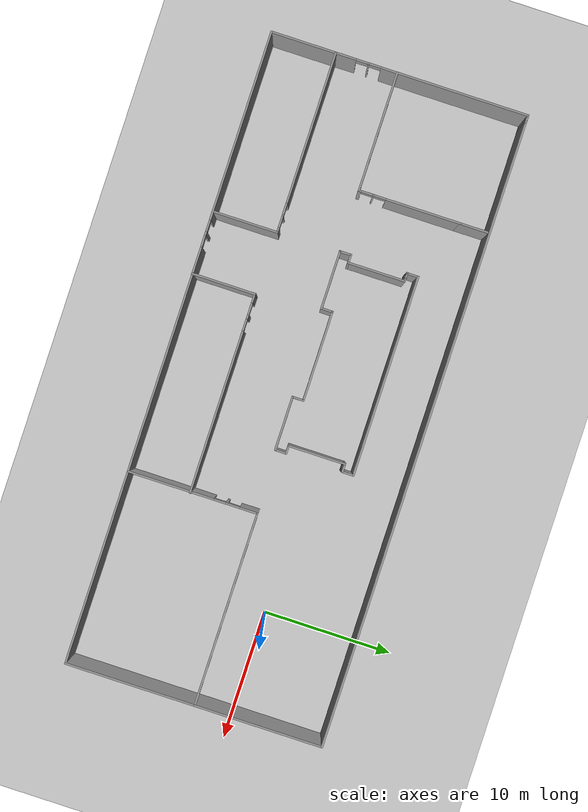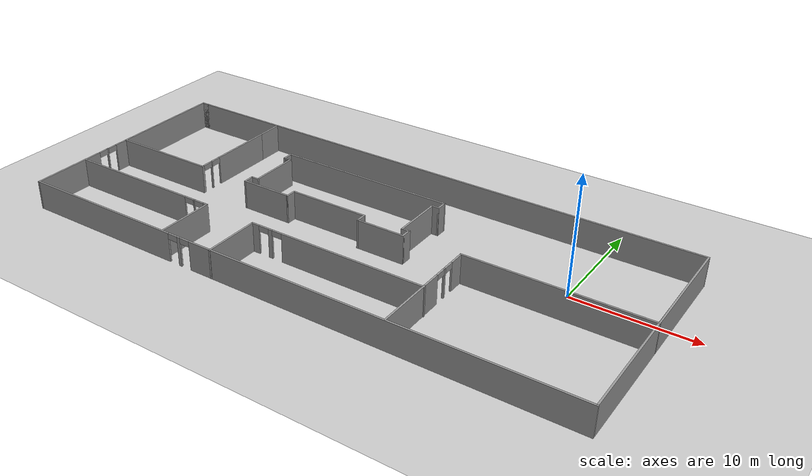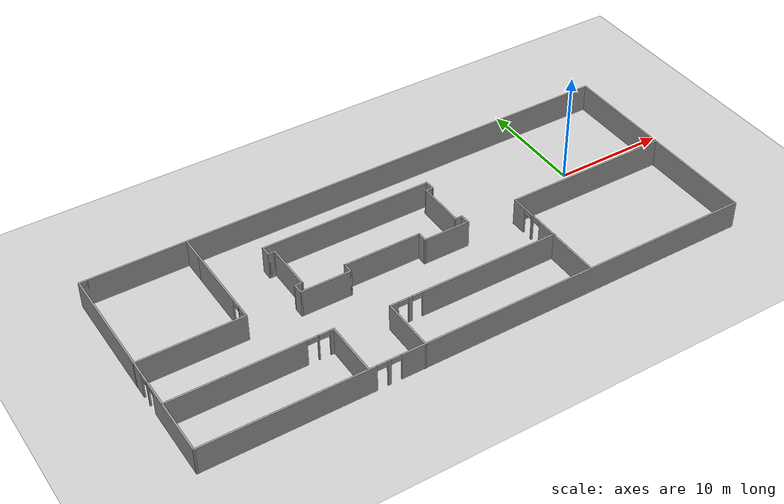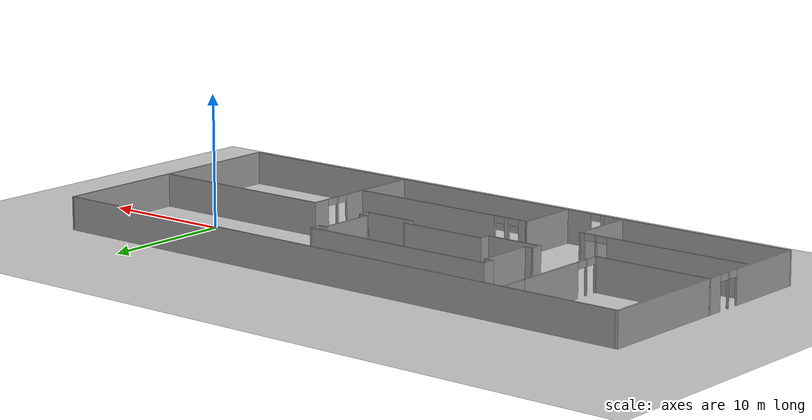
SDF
<sdf version="1.6">
 <world name="default">
  <model name="ground_plane">
   <static>1</static>
   <link name="link">
    <collision name="collision">
     <geometry><plane><normal>0 0 1</normal><size>100 100</size></plane></geometry>
     <surface><friction><ode><mu>100</mu><mu2>50</mu2></ode></friction></surface>
    </collision>
    <visual name="visual">
     <cast_shadows>0</cast_shadows>
     <geometry><plane><normal>0 0 1</normal><size>100 100</size></plane></geometry>
     <material>
      <script><uri>file://media/materials/scripts/gazebo.material</uri><name>Gazebo/Grey</name></script>
     </material>
    </visual>
   </link>
  </model>
  <model name="build1">
   <pose>-16.9008 -2.95936 0 0 -0 0</pose>
   <link name="Wall_0">
    <collision name="Wall_0_Collision">
     <geometry><box><size>48.75 0.15 2.5</size></box></geometry>
     <pose>0 0 1.25 0 -0 0</pose>
    </collision>
    <visual name="Wall_0_Visual">
     <pose>0 0 1.25 0 -0 0</pose>
     <geometry><box><size>48.75 0.15 2.5</size></box></geometry>
     <material>
      <script><uri>file://media/materials/scripts/gazebo.material</uri><name>Gazebo/Grey</name></script>
      <ambient>1 1 1 1</ambient>
     </material>
    </visual>
    <pose>0.128151 9.93761 0 0 -0 0</pose>
   </link>
   <link name="Wall_10">
    <collision name="Wall_10_Collision">
     <geometry><box><size>0.75 0.15 2.5</size></box></geometry>
     <pose>0 0 1.25 0 -0 0</pose>
    </collision>
    <visual name="Wall_10_Visual">
     <pose>0 0 1.25 0 -0 0</pose>
     <geometry><box><size>0.75 0.15 2.5</size></box></geometry>
     <material>
      <script><uri>file://media/materials/scripts/gazebo.material</uri><name>Gazebo/Grey</name></script>
      <ambient>1 1 1 1</ambient>
     </material>
    </visual>
    <pose>-24.1218 9.93761 0 0 -0 0</pose>
   </link>
   <link name="Wall_101">
    <collision name="Wall_101_Collision">
     <geometry><box><size>10 0.15 2.5</size></box></geometry>
     <pose>0 0 1.25 0 -0 0</pose>
    </collision>
    <visual name="Wall_101_Visual">
     <pose>0 0 1.25 0 -0 0</pose>
     <geometry><box><size>10 0.15 2.5</size></box></geometry>
     <material>
      <script><uri>file://media/materials/scripts/gazebo.material</uri><name>Gazebo/Grey</name></script>
      <ambient>1 1 1 1</ambient>
     </material>
    </visual>
    <pose>24.4281 5.01261 0 0 0 -1.5708</pose>
   </link>
   <link name="Wall_102">
    <collision name="Wall_102_Collision">
     <geometry><box><size>15 0.15 2.5</size></box></geometry>
     <pose>0 0 1.25 0 -0 0</pose>
    </collision>
    <visual name="Wall_102_Visual">
     <pose>0 0 1.25 0 -0 0</pose>
     <geometry><box><size>15 0.15 2.5</size></box></geometry>
     <material>
      <script><uri>file://media/materials/scripts/gazebo.material</uri><name>Gazebo/Grey</name></script>
      <ambient>1 1 1 1</ambient>
     </material>
    </visual>
    <pose>17.0032 0.087612 0 0 -0 3.14159</pose>
   </link>
   <link name="Wall_103">
    <pose>9.57815 -2.46239 0 0 0 -1.5708</pose>
    <visual name="Wall_103_Visual_0">
     <pose>-1.90662 0 1.25 0 -0 0</pose>
     <geometry><box><size>1.43676 0.15 2.5</size></box></geometry>
     <material>
      <script><uri>file://media/materials/scripts/gazebo.material</uri><name>Gazebo/Grey</name></script>
      <ambient>1 1 1 1</ambient>
     </material>
    </visual>
    <collision name="Wall_103_Collision_0">
     <geometry><box><size>1.43676 0.15 2.5</size></box></geometry>
     <pose>-1.90662 0 1.25 0 -0 0</pose>
    </collision>
    <visual name="Wall_103_Visual_1">
     <pose>-0.188989 0 1.25 0 -0 0</pose>
     <geometry><box><size>0.198503 0.15 2.5</size></box></geometry>
     <material>
      <script><uri>file://media/materials/scripts/gazebo.material</uri><name>Gazebo/Grey</name></script>
      <ambient>1 1 1 1</ambient>
     </material>
    </visual>
    <collision name="Wall_103_Collision_1">
     <geometry><box><size>0.198503 0.15 2.5</size></box></geometry>
     <pose>-0.188989 0 1.25 0 -0 0</pose>
    </collision>
    <visual name="Wall_103_Visual_2">
     <pose>1.71763 0 1.25 0 -0 0</pose>
     <geometry><box><size>1.81474 0.15 2.5</size></box></geometry>
     <material>
      <script><uri>file://media/materials/scripts/gazebo.material</uri><name>Gazebo/Grey</name></script>
      <ambient>1 1 1 1</ambient>
     </material>
    </visual>
    <collision name="Wall_103_Collision_2">
     <geometry><box><size>1.81474 0.15 2.5</size></box></geometry>
     <pose>1.71763 0 1.25 0 -0 0</pose>
    </collision>
    <visual name="Wall_103_Visual_3">
     <pose>-0.73824 0 2.25 0 -0 0</pose>
     <geometry><box><size>0.9 0.15 0.5</size></box></geometry>
     <material>
      <script><uri>file://media/materials/scripts/gazebo.material</uri><name>Gazebo/Grey</name></script>
      <ambient>1 1 1 1</ambient>
     </material>
    </visual>
    <collision name="Wall_103_Collision_3">
     <geometry><box><size>0.9 0.15 0.5</size></box></geometry>
     <pose>-0.73824 0 2.25 0 -0 0</pose>
    </collision>
    <visual name="Wall_103_Visual_4">
     <pose>0.360263 0 2.25 0 -0 0</pose>
     <geometry><box><size>0.9 0.15 0.5</size></box></geometry>
     <material>
      <script><uri>file://media/materials/scripts/gazebo.material</uri><name>Gazebo/Grey</name></script>
      <ambient>1 1 1 1</ambient>
     </material>
    </visual>
    <collision name="Wall_103_Collision_4">
     <geometry><box><size>0.9 0.15 0.5</size></box></geometry>
     <pose>0.360263 0 2.25 0 -0 0</pose>
    </collision>
   </link>
   <link name="Wall_105">
    <pose>1.96209 -5.08761 0 0 -0 0</pose>
    <visual name="Wall_105_Visual_0">
     <pose>-7.37124 0 1.25 0 -0 0</pose>
     <geometry><box><size>0.757518 0.15 2.5</size></box></geometry>
     <material>
      <script><uri>file://media/materials/scripts/gazebo.material</uri><name>Gazebo/Grey</name></script>
      <ambient>1 1 1 1</ambient>
     </material>
    </visual>
    <collision name="Wall_105_Collision_0">
     <geometry><box><size>0.757518 0.15 2.5</size></box></geometry>
     <pose>-7.37124 0 1.25 0 -0 0</pose>
    </collision>
    <visual name="Wall_105_Visual_1">
     <pose>-5.91186 0 1.25 0 -0 0</pose>
     <geometry><box><size>0.361245 0.15 2.5</size></box></geometry>
     <material>
      <script><uri>file://media/materials/scripts/gazebo.material</uri><name>Gazebo/Grey</name></script>
      <ambient>1 1 1 1</ambient>
     </material>
    </visual>
    <collision name="Wall_105_Collision_1">
     <geometry><box><size>0.361245 0.15 2.5</size></box></geometry>
     <pose>-5.91186 0 1.25 0 -0 0</pose>
    </collision>
    <visual name="Wall_105_Visual_2">
     <pose>1.45938 0 1.25 0 -0 0</pose>
     <geometry><box><size>12.5812 0.15 2.5</size></box></geometry>
     <material>
      <script><uri>file://media/materials/scripts/gazebo.material</uri><name>Gazebo/Grey</name></script>
      <ambient>1 1 1 1</ambient>
     </material>
    </visual>
    <collision name="Wall_105_Collision_2">
     <geometry><box><size>12.5812 0.15 2.5</size></box></geometry>
     <pose>1.45938 0 1.25 0 -0 0</pose>
    </collision>
    <visual name="Wall_105_Visual_3">
     <pose>-6.54248 0 2.25 0 -0 0</pose>
     <geometry><box><size>0.9 0.15 0.5</size></box></geometry>
     <material>
      <script><uri>file://media/materials/scripts/gazebo.material</uri><name>Gazebo/Grey</name></script>
      <ambient>1 1 1 1</ambient>
     </material>
    </visual>
    <collision name="Wall_105_Collision_3">
     <geometry><box><size>0.9 0.15 0.5</size></box></geometry>
     <pose>-6.54248 0 2.25 0 -0 0</pose>
    </collision>
    <visual name="Wall_105_Visual_4">
     <pose>-5.28124 0 2.25 0 -0 0</pose>
     <geometry><box><size>0.9 0.15 0.5</size></box></geometry>
     <material>
      <script><uri>file://media/materials/scripts/gazebo.material</uri><name>Gazebo/Grey</name></script>
      <ambient>1 1 1 1</ambient>
     </material>
    </visual>
    <collision name="Wall_105_Collision_4">
     <geometry><box><size>0.9 0.15 0.5</size></box></geometry>
     <pose>-5.28124 0 2.25 0 -0 0</pose>
    </collision>
   </link>
   <link name="Wall_14">
    <collision name="Wall_14_Collision">
     <geometry><box><size>9.25 0.15 2.5</size></box></geometry>
     <pose>0 0 1.25 0 -0 0</pose>
    </collision>
    <visual name="Wall_14_Visual">
     <pose>0 0 1.25 0 -0 0</pose>
     <geometry><box><size>9.25 0.15 2.5</size></box></geometry>
     <material>
      <script><uri>file://media/materials/scripts/gazebo.material</uri><name>Gazebo/Grey</name></script>
      <ambient>1 1 1 1</ambient>
     </material>
    </visual>
    <pose>-19.8782 -0.176763 0 0 -0 3.14159</pose>
   </link>
   <link name="Wall_16">
    <pose>-15.3282 3.74824 0 0 -0 1.5708</pose>
    <visual name="Wall_16_Visual_0">
     <pose>-3.87767 0 1.25 0 -0 0</pose>
     <geometry><box><size>0.244662 0.15 2.5</size></box></geometry>
     <material>
      <script><uri>file://media/materials/scripts/gazebo.material</uri><name>Gazebo/Grey</name></script>
      <ambient>1 1 1 1</ambient>
     </material>
    </visual>
    <collision name="Wall_16_Collision_0">
     <geometry><box><size>0.244662 0.15 2.5</size></box></geometry>
     <pose>-3.87767 0 1.25 0 -0 0</pose>
    </collision>
    <visual name="Wall_16_Visual_1">
     <pose>-2.79773 0 1.25 0 -0 0</pose>
     <geometry><box><size>0.11521 0.15 2.5</size></box></geometry>
     <material>
      <script><uri>file://media/materials/scripts/gazebo.material</uri><name>Gazebo/Grey</name></script>
      <ambient>1 1 1 1</ambient>
     </material>
    </visual>
    <collision name="Wall_16_Collision_1">
     <geometry><box><size>0.11521 0.15 2.5</size></box></geometry>
     <pose>-2.79773 0 1.25 0 -0 0</pose>
    </collision>
    <visual name="Wall_16_Visual_2">
     <pose>1.07994 0 1.25 0 -0 0</pose>
     <geometry><box><size>5.84013 0.15 2.5</size></box></geometry>
     <material>
      <script><uri>file://media/materials/scripts/gazebo.material</uri><name>Gazebo/Grey</name></script>
      <ambient>1 1 1 1</ambient>
     </material>
    </visual>
    <collision name="Wall_16_Collision_2">
     <geometry><box><size>5.84013 0.15 2.5</size></box></geometry>
     <pose>1.07994 0 1.25 0 -0 0</pose>
    </collision>
    <visual name="Wall_16_Visual_3">
     <pose>-3.30534 0 2.25 0 -0 0</pose>
     <geometry><box><size>0.9 0.15 0.5</size></box></geometry>
     <material>
      <script><uri>file://media/materials/scripts/gazebo.material</uri><name>Gazebo/Grey</name></script>
      <ambient>1 1 1 1</ambient>
     </material>
    </visual>
    <collision name="Wall_16_Collision_3">
     <geometry><box><size>0.9 0.15 0.5</size></box></geometry>
     <pose>-3.30534 0 2.25 0 -0 0</pose>
    </collision>
    <visual name="Wall_16_Visual_4">
     <pose>-2.29013 0 2.25 0 -0 0</pose>
     <geometry><box><size>0.9 0.15 0.5</size></box></geometry>
     <material>
      <script><uri>file://media/materials/scripts/gazebo.material</uri><name>Gazebo/Grey</name></script>
      <ambient>1 1 1 1</ambient>
     </material>
    </visual>
    <collision name="Wall_16_Collision_4">
     <geometry><box><size>0.9 0.15 0.5</size></box></geometry>
     <pose>-2.29013 0 2.25 0 -0 0</pose>
    </collision>
   </link>
   <link name="Wall_19">
    <collision name="Wall_19_Collision">
     <geometry><box><size>2.25 0.15 2.5</size></box></geometry>
     <pose>0 0 1.25 0 -0 0</pose>
    </collision>
    <visual name="Wall_19_Visual">
     <pose>0 0 1.25 0 -0 0</pose>
     <geometry><box><size>2.25 0.15 2.5</size></box></geometry>
     <material>
      <script><uri>file://media/materials/scripts/gazebo.material</uri><name>Gazebo/Grey</name></script>
      <ambient>1 1 1 1</ambient>
     </material>
    </visual>
    <pose>-15.3282 8.72324 0 0 -0 1.5708</pose>
   </link>
   <link name="Wall_21">
    <pose>-17.4625 -4.93332 0 0 -0 0</pose>
    <visual name="Wall_21_Visual_0">
     <pose>-1.1775 0 1.25 0 -0 0</pose>
     <geometry><box><size>11.645 0.15 2.5</size></box></geometry>
     <material>
      <script><uri>file://media/materials/scripts/gazebo.material</uri><name>Gazebo/Grey</name></script>
      <ambient>1 1 1 1</ambient>
     </material>
    </visual>
    <collision name="Wall_21_Collision_0">
     <geometry><box><size>11.645 0.15 2.5</size></box></geometry>
     <pose>-1.1775 0 1.25 0 -0 0</pose>
    </collision>
    <visual name="Wall_21_Visual_1">
     <pose>5.6026 0 1.25 0 -0 0</pose>
     <geometry><box><size>0.115209 0.15 2.5</size></box></geometry>
     <material>
      <script><uri>file://media/materials/scripts/gazebo.material</uri><name>Gazebo/Grey</name></script>
      <ambient>1 1 1 1</ambient>
     </material>
    </visual>
    <collision name="Wall_21_Collision_1">
     <geometry><box><size>0.115209 0.15 2.5</size></box></geometry>
     <pose>5.6026 0 1.25 0 -0 0</pose>
    </collision>
    <visual name="Wall_21_Visual_2">
     <pose>6.7801 0 1.25 0 -0 0</pose>
     <geometry><box><size>0.439798 0.15 2.5</size></box></geometry>
     <material>
      <script><uri>file://media/materials/scripts/gazebo.material</uri><name>Gazebo/Grey</name></script>
      <ambient>1 1 1 1</ambient>
     </material>
    </visual>
    <collision name="Wall_21_Collision_2">
     <geometry><box><size>0.439798 0.15 2.5</size></box></geometry>
     <pose>6.7801 0 1.25 0 -0 0</pose>
    </collision>
    <visual name="Wall_21_Visual_3">
     <pose>5.09499 0 2.25 0 -0 0</pose>
     <geometry><box><size>0.9 0.15 0.5</size></box></geometry>
     <material>
      <script><uri>file://media/materials/scripts/gazebo.material</uri><name>Gazebo/Grey</name></script>
      <ambient>1 1 1 1</ambient>
     </material>
    </visual>
    <collision name="Wall_21_Collision_3">
     <geometry><box><size>0.9 0.15 0.5</size></box></geometry>
     <pose>5.09499 0 2.25 0 -0 0</pose>
    </collision>
    <visual name="Wall_21_Visual_4">
     <pose>6.1102 0 2.25 0 -0 0</pose>
     <geometry><box><size>0.9 0.15 0.5</size></box></geometry>
     <material>
      <script><uri>file://media/materials/scripts/gazebo.material</uri><name>Gazebo/Grey</name></script>
      <ambient>1 1 1 1</ambient>
     </material>
    </visual>
    <collision name="Wall_21_Collision_4">
     <geometry><box><size>0.9 0.15 0.5</size></box></geometry>
     <pose>6.1102 0 2.25 0 -0 0</pose>
    </collision>
   </link>
   <link name="Wall_22">
    <collision name="Wall_22_Collision">
     <geometry><box><size>5 0.15 2.5</size></box></geometry>
     <pose>0 0 1.25 0 -0 0</pose>
    </collision>
    <visual name="Wall_22_Visual">
     <pose>0 0 1.25 0 -0 0</pose>
     <geometry><box><size>5 0.15 2.5</size></box></geometry>
     <material>
      <script><uri>file://media/materials/scripts/gazebo.material</uri><name>Gazebo/Grey</name></script>
      <ambient>1 1 1 1</ambient>
     </material>
    </visual>
    <pose>-10.5375 -7.35832 0 0 0 -1.5708</pose>
   </link>
   <link name="Wall_24">
    <collision name="Wall_24_Collision">
     <geometry><box><size>5 0.15 2.5</size></box></geometry>
     <pose>0 0 1.25 0 -0 0</pose>
    </collision>
    <visual name="Wall_24_Visual">
     <pose>0 0 1.25 0 -0 0</pose>
     <geometry><box><size>5 0.15 2.5</size></box></geometry>
     <material>
      <script><uri>file://media/materials/scripts/gazebo.material</uri><name>Gazebo/Grey</name></script>
      <ambient>1 1 1 1</ambient>
     </material>
    </visual>
    <pose>-5.71291 -7.51261 0 0 -0 1.5708</pose>
   </link>
   <link name="Wall_26">
    <collision name="Wall_26_Collision">
     <geometry><box><size>5 0.15 2.5</size></box></geometry>
     <pose>0 0 1.25 0 -0 0</pose>
    </collision>
    <visual name="Wall_26_Visual">
     <pose>0 0 1.25 0 -0 0</pose>
     <geometry><box><size>5 0.15 2.5</size></box></geometry>
     <material>
      <script><uri>file://media/materials/scripts/gazebo.material</uri><name>Gazebo/Grey</name></script>
      <ambient>1 1 1 1</ambient>
     </material>
    </visual>
    <pose>9.57927 -7.43124 0 0 0 -1.5708</pose>
   </link>
   <link name="Wall_69">
    <collision name="Wall_69_Collision">
     <geometry><box><size>4.5 0.15 2.5</size></box></geometry>
     <pose>0 0 1.25 0 -0 0</pose>
    </collision>
    <visual name="Wall_69_Visual">
     <pose>0 0 1.25 0 -0 0</pose>
     <geometry><box><size>4.5 0.15 2.5</size></box></geometry>
     <material>
      <script><uri>file://media/materials/scripts/gazebo.material</uri><name>Gazebo/Grey</name></script>
      <ambient>1 1 1 1</ambient>
     </material>
    </visual>
    <pose>-8.40817 -0.110852 0 0 -0 0</pose>
   </link>
   <link name="Wall_7">
    <collision name="Wall_7_Collision">
     <geometry><box><size>20 0.15 2.5</size></box></geometry>
     <pose>0 0 1.25 0 -0 0</pose>
    </collision>
    <visual name="Wall_7_Visual">
     <pose>0 0 1.25 0 -0 0</pose>
     <geometry><box><size>20 0.15 2.5</size></box></geometry>
     <material>
      <script><uri>file://media/materials/scripts/gazebo.material</uri><name>Gazebo/Grey</name></script>
      <ambient>1 1 1 1</ambient>
     </material>
    </visual>
    <pose>24.4281 0.012612 0 0 0 -1.5708</pose>
   </link>
   <link name="Wall_70">
    <collision name="Wall_70_Collision">
     <geometry><box><size>1 0.15 2.5</size></box></geometry>
     <pose>0 0 1.25 0 -0 0</pose>
    </collision>
    <visual name="Wall_70_Visual">
     <pose>0 0 1.25 0 -0 0</pose>
     <geometry><box><size>1 0.15 2.5</size></box></geometry>
     <material>
      <script><uri>file://media/materials/scripts/gazebo.material</uri><name>Gazebo/Grey</name></script>
      <ambient>1 1 1 1</ambient>
     </material>
    </visual>
    <pose>-6.23316 0.314148 0 0 -0 1.5708</pose>
   </link>
   <link name="Wall_78">
    <collision name="Wall_78_Collision">
     <geometry><box><size>0.75 0.15 2.5</size></box></geometry>
     <pose>0 0 1.25 0 -0 0</pose>
    </collision>
    <visual name="Wall_78_Visual">
     <pose>0 0 1.25 0 -0 0</pose>
     <geometry><box><size>0.75 0.15 2.5</size></box></geometry>
     <material>
      <script><uri>file://media/materials/scripts/gazebo.material</uri><name>Gazebo/Grey</name></script>
      <ambient>1 1 1 1</ambient>
     </material>
    </visual>
    <pose>4.41683 0.739148 0 0 -0 3.14159</pose>
   </link>
   <link name="Wall_79">
    <collision name="Wall_79_Collision">
     <geometry><box><size>4.5 0.15 2.5</size></box></geometry>
     <pose>0 0 1.25 0 -0 0</pose>
    </collision>
    <visual name="Wall_79_Visual">
     <pose>0 0 1.25 0 -0 0</pose>
     <geometry><box><size>4.5 0.15 2.5</size></box></geometry>
     <material>
      <script><uri>file://media/materials/scripts/gazebo.material</uri><name>Gazebo/Grey</name></script>
      <ambient>1 1 1 1</ambient>
     </material>
    </visual>
    <pose>4.11684 2.91415 0 0 -0 1.5708</pose>
   </link>
   <link name="Wall_8">
    <pose>0.003151 -9.91239 0 0 -0 3.14159</pose>
    <visual name="Wall_8_Visual_0">
     <pose>-8.35572 0 1.25 0 -0 0</pose>
     <geometry><box><size>32.2886 0.15 2.5</size></box></geometry>
     <material>
      <script><uri>file://media/materials/scripts/gazebo.material</uri><name>Gazebo/Grey</name></script>
      <ambient>1 1 1 1</ambient>
     </material>
    </visual>
    <collision name="Wall_8_Collision_0">
     <geometry><box><size>32.2886 0.15 2.5</size></box></geometry>
     <pose>-8.35572 0 1.25 0 -0 0</pose>
    </collision>
    <visual name="Wall_8_Visual_1">
     <pose>8.82849 0 1.25 0 -0 0</pose>
     <geometry><box><size>0.279873 0.15 2.5</size></box></geometry>
     <material>
      <script><uri>file://media/materials/scripts/gazebo.material</uri><name>Gazebo/Grey</name></script>
      <ambient>1 1 1 1</ambient>
     </material>
    </visual>
    <collision name="Wall_8_Collision_1">
     <geometry><box><size>0.279873 0.15 2.5</size></box></geometry>
     <pose>8.82849 0 1.25 0 -0 0</pose>
    </collision>
    <visual name="Wall_8_Visual_2">
     <pose>17.1842 0 1.25 0 -0 0</pose>
     <geometry><box><size>14.6316 0.15 2.5</size></box></geometry>
     <material>
      <script><uri>file://media/materials/scripts/gazebo.material</uri><name>Gazebo/Grey</name></script>
      <ambient>1 1 1 1</ambient>
     </material>
    </visual>
    <collision name="Wall_8_Collision_2">
     <geometry><box><size>14.6316 0.15 2.5</size></box></geometry>
     <pose>17.1842 0 1.25 0 -0 0</pose>
    </collision>
    <visual name="Wall_8_Visual_3">
     <pose>8.23855 0 2.25 0 -0 0</pose>
     <geometry><box><size>0.9 0.15 0.5</size></box></geometry>
     <material>
      <script><uri>file://media/materials/scripts/gazebo.material</uri><name>Gazebo/Grey</name></script>
      <ambient>1 1 1 1</ambient>
     </material>
    </visual>
    <collision name="Wall_8_Collision_3">
     <geometry><box><size>0.9 0.15 0.5</size></box></geometry>
     <pose>8.23855 0 2.25 0 -0 0</pose>
    </collision>
    <visual name="Wall_8_Visual_4">
     <pose>9.41842 0 2.25 0 -0 0</pose>
     <geometry><box><size>0.9 0.15 0.5</size></box></geometry>
     <material>
      <script><uri>file://media/materials/scripts/gazebo.material</uri><name>Gazebo/Grey</name></script>
      <ambient>1 1 1 1</ambient>
     </material>
    </visual>
    <collision name="Wall_8_Collision_4">
     <geometry><box><size>0.9 0.15 0.5</size></box></geometry>
     <pose>9.41842 0 2.25 0 -0 0</pose>
    </collision>
   </link>
   <link name="Wall_80">
    <collision name="Wall_80_Collision">
     <geometry><box><size>0.75 0.15 2.5</size></box></geometry>
     <pose>0 0 1.25 0 -0 0</pose>
    </collision>
    <visual name="Wall_80_Visual">
     <pose>0 0 1.25 0 -0 0</pose>
     <geometry><box><size>0.75 0.15 2.5</size></box></geometry>
     <material>
      <script><uri>file://media/materials/scripts/gazebo.material</uri><name>Gazebo/Grey</name></script>
      <ambient>1 1 1 1</ambient>
     </material>
    </visual>
    <pose>4.41683 5.08915 0 0 -0 0</pose>
   </link>
   <link name="Wall_81">
    <collision name="Wall_81_Collision">
     <geometry><box><size>1 0.15 2.5</size></box></geometry>
     <pose>0 0 1.25 0 -0 0</pose>
    </collision>
    <visual name="Wall_81_Visual">
     <pose>0 0 1.25 0 -0 0</pose>
     <geometry><box><size>1 0.15 2.5</size></box></geometry>
     <material>
      <script><uri>file://media/materials/scripts/gazebo.material</uri><name>Gazebo/Grey</name></script>
      <ambient>1 1 1 1</ambient>
     </material>
    </visual>
    <pose>4.71683 5.51415 0 0 -0 1.5708</pose>
   </link>
   <link name="Wall_82">
    <collision name="Wall_82_Collision">
     <geometry><box><size>15.5 0.15 2.5</size></box></geometry>
     <pose>0 0 1.25 0 -0 0</pose>
    </collision>
    <visual name="Wall_82_Visual">
     <pose>0 0 1.25 0 -0 0</pose>
     <geometry><box><size>15.5 0.15 2.5</size></box></geometry>
     <material>
      <script><uri>file://media/materials/scripts/gazebo.material</uri><name>Gazebo/Grey</name></script>
      <ambient>1 1 1 1</ambient>
     </material>
    </visual>
    <pose>-2.95817 5.93915 0 0 -0 3.14159</pose>
   </link>
   <link name="Wall_84">
    <collision name="Wall_84_Collision">
     <geometry><box><size>1 0.15 2.5</size></box></geometry>
     <pose>0 0 1.25 0 -0 0</pose>
    </collision>
    <visual name="Wall_84_Visual">
     <pose>0 0 1.25 0 -0 0</pose>
     <geometry><box><size>1 0.15 2.5</size></box></geometry>
     <material>
      <script><uri>file://media/materials/scripts/gazebo.material</uri><name>Gazebo/Grey</name></script>
      <ambient>1 1 1 1</ambient>
     </material>
    </visual>
    <pose>-10.6332 5.51415 0 0 0 -1.5708</pose>
   </link>
   <link name="Wall_85">
    <collision name="Wall_85_Collision">
     <geometry><box><size>0.5 0.15 2.5</size></box></geometry>
     <pose>0 0 1.25 0 -0 0</pose>
    </collision>
    <visual name="Wall_85_Visual">
     <pose>0 0 1.25 0 -0 0</pose>
     <geometry><box><size>0.5 0.15 2.5</size></box></geometry>
     <material>
      <script><uri>file://media/materials/scripts/gazebo.material</uri><name>Gazebo/Grey</name></script>
      <ambient>1 1 1 1</ambient>
     </material>
    </visual>
    <pose>-10.4582 5.08915 0 0 -0 0</pose>
   </link>
   <link name="Wall_87">
    <collision name="Wall_87_Collision">
     <geometry><box><size>0.75 0.15 2.5</size></box></geometry>
     <pose>0 0 1.25 0 -0 0</pose>
    </collision>
    <visual name="Wall_87_Visual">
     <pose>0 0 1.25 0 -0 0</pose>
     <geometry><box><size>0.75 0.15 2.5</size></box></geometry>
     <material>
      <script><uri>file://media/materials/scripts/gazebo.material</uri><name>Gazebo/Grey</name></script>
      <ambient>1 1 1 1</ambient>
     </material>
    </visual>
    <pose>-10.3332 5.08915 0 0 -0 0</pose>
   </link>
   <link name="Wall_88">
    <collision name="Wall_88_Collision">
     <geometry><box><size>4.5 0.15 2.5</size></box></geometry>
     <pose>0 0 1.25 0 -0 0</pose>
    </collision>
    <visual name="Wall_88_Visual">
     <pose>0 0 1.25 0 -0 0</pose>
     <geometry><box><size>4.5 0.15 2.5</size></box></geometry>
     <material>
      <script><uri>file://media/materials/scripts/gazebo.material</uri><name>Gazebo/Grey</name></script>
      <ambient>1 1 1 1</ambient>
     </material>
    </visual>
    <pose>-10.0332 2.91415 0 0 0 -1.5708</pose>
   </link>
   <link name="Wall_89">
    <collision name="Wall_89_Collision">
     <geometry><box><size>0.75 0.15 2.5</size></box></geometry>
     <pose>0 0 1.25 0 -0 0</pose>
    </collision>
    <visual name="Wall_89_Visual">
     <pose>0 0 1.25 0 -0 0</pose>
     <geometry><box><size>0.75 0.15 2.5</size></box></geometry>
     <material>
      <script><uri>file://media/materials/scripts/gazebo.material</uri><name>Gazebo/Grey</name></script>
      <ambient>1 1 1 1</ambient>
     </material>
    </visual>
    <pose>-10.3332 0.739148 0 0 -0 3.14159</pose>
   </link>
   <link name="Wall_9">
    <pose>-24.4218 0.012612 0 0 -0 1.5708</pose>
    <visual name="Wall_9_Visual_0">
     <pose>-6.68083 0 1.25 0 -0 0</pose>
     <geometry><box><size>6.63833 0.15 2.5</size></box></geometry>
     <material>
      <script><uri>file://media/materials/scripts/gazebo.material</uri><name>Gazebo/Grey</name></script>
      <ambient>1 1 1 1</ambient>
     </material>
    </visual>
    <collision name="Wall_9_Collision_0">
     <geometry><box><size>6.63833 0.15 2.5</size></box></geometry>
     <pose>-6.68083 0 1.25 0 -0 0</pose>
    </collision>
    <visual name="Wall_9_Visual_1">
     <pose>-2.4031 0 1.25 0 -0 0</pose>
     <geometry><box><size>0.117133 0.15 2.5</size></box></geometry>
     <material>
      <script><uri>file://media/materials/scripts/gazebo.material</uri><name>Gazebo/Grey</name></script>
      <ambient>1 1 1 1</ambient>
     </material>
    </visual>
    <collision name="Wall_9_Collision_1">
     <geometry><box><size>0.117133 0.15 2.5</size></box></geometry>
     <pose>-2.4031 0 1.25 0 -0 0</pose>
    </collision>
    <visual name="Wall_9_Visual_2">
     <pose>4.27773 0 1.25 0 -0 0</pose>
     <geometry><box><size>11.4445 0.15 2.5</size></box></geometry>
     <material>
      <script><uri>file://media/materials/scripts/gazebo.material</uri><name>Gazebo/Grey</name></script>
      <ambient>1 1 1 1</ambient>
     </material>
    </visual>
    <collision name="Wall_9_Collision_2">
     <geometry><box><size>11.4445 0.15 2.5</size></box></geometry>
     <pose>4.27773 0 1.25 0 -0 0</pose>
    </collision>
    <visual name="Wall_9_Visual_3">
     <pose>-2.91167 0 2.25 0 -0 0</pose>
     <geometry><box><size>0.9 0.15 0.5</size></box></geometry>
     <material>
      <script><uri>file://media/materials/scripts/gazebo.material</uri><name>Gazebo/Grey</name></script>
      <ambient>1 1 1 1</ambient>
     </material>
    </visual>
    <collision name="Wall_9_Collision_3">
     <geometry><box><size>0.9 0.15 0.5</size></box></geometry>
     <pose>-2.91167 0 2.25 0 -0 0</pose>
    </collision>
    <visual name="Wall_9_Visual_4">
     <pose>-1.89453 0 2.25 0 -0 0</pose>
     <geometry><box><size>0.9 0.15 0.5</size></box></geometry>
     <material>
      <script><uri>file://media/materials/scripts/gazebo.material</uri><name>Gazebo/Grey</name></script>
      <ambient>1 1 1 1</ambient>
     </material>
    </visual>
    <collision name="Wall_9_Collision_4">
     <geometry><box><size>0.9 0.15 0.5</size></box></geometry>
     <pose>-1.89453 0 2.25 0 -0 0</pose>
    </collision>
   </link>
   <link name="Wall_92">
    <collision name="Wall_92_Collision">
     <geometry><box><size>1 0.15 2.5</size></box></geometry>
     <pose>0 0 1.25 0 -0 0</pose>
    </collision>
    <visual name="Wall_92_Visual">
     <pose>0 0 1.25 0 -0 0</pose>
     <geometry><box><size>1 0.15 2.5</size></box></geometry>
     <material>
      <script><uri>file://media/materials/scripts/gazebo.material</uri><name>Gazebo/Grey</name></script>
      <ambient>1 1 1 1</ambient>
     </material>
    </visual>
    <pose>-10.6332 0.314148 0 0 0 -1.5708</pose>
   </link>
   <link name="Wall_96">
    <collision name="Wall_96_Collision">
     <geometry><box><size>1 0.15 2.5</size></box></geometry>
     <pose>0 0 1.25 0 -0 0</pose>
    </collision>
    <visual name="Wall_96_Visual">
     <pose>0 0 1.25 0 -0 0</pose>
     <geometry><box><size>1 0.15 2.5</size></box></geometry>
     <material>
      <script><uri>file://media/materials/scripts/gazebo.material</uri><name>Gazebo/Grey</name></script>
      <ambient>1 1 1 1</ambient>
     </material>
    </visual>
    <pose>4.71683 0.314148 0 0 0 -1.5708</pose>
   </link>
   <link name="Wall_97">
    <collision name="Wall_97_Collision">
     <geometry><box><size>4.25 0.15 2.5</size></box></geometry>
     <pose>0 0 1.25 0 -0 0</pose>
    </collision>
    <visual name="Wall_97_Visual">
     <pose>0 0 1.25 0 -0 0</pose>
     <geometry><box><size>4.25 0.15 2.5</size></box></geometry>
     <material>
      <script><uri>file://media/materials/scripts/gazebo.material</uri><name>Gazebo/Grey</name></script>
      <ambient>1 1 1 1</ambient>
     </material>
    </visual>
    <pose>2.66683 -0.110852 0 0 -0 3.14159</pose>
   </link>
   <link name="Wall_98">
    <collision name="Wall_98_Collision">
     <geometry><box><size>1 0.15 2.5</size></box></geometry>
     <pose>0 0 1.25 0 -0 0</pose>
    </collision>
    <visual name="Wall_98_Visual">
     <pose>0 0 1.25 0 -0 0</pose>
     <geometry><box><size>1 0.15 2.5</size></box></geometry>
     <material>
      <script><uri>file://media/materials/scripts/gazebo.material</uri><name>Gazebo/Grey</name></script>
      <ambient>1 1 1 1</ambient>
     </material>
    </visual>
    <pose>0.616835 0.314148 0 0 -0 1.5708</pose>
   </link>
   <link name="Wall_99">
    <collision name="Wall_99_Collision">
     <geometry><box><size>7 0.15 2.5</size></box></geometry>
     <pose>0 0 1.25 0 -0 0</pose>
    </collision>
    <visual name="Wall_99_Visual">
     <pose>0 0 1.25 0 -0 0</pose>
     <geometry><box><size>7 0.15 2.5</size></box></geometry>
     <material>
      <script><uri>file://media/materials/scripts/gazebo.material</uri><name>Gazebo/Grey</name></script>
      <ambient>1 1 1 1</ambient>
     </material>
    </visual>
    <pose>-2.80816 0.739148 0 0 -0 3.14159</pose>
   </link>
   <static>1</static>
  </model>
 </world>
</sdf>
